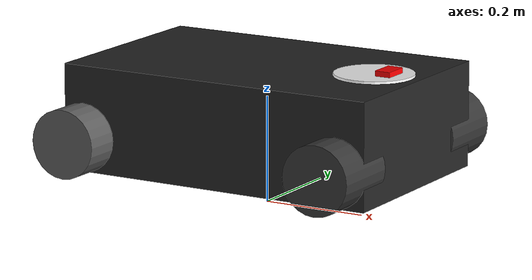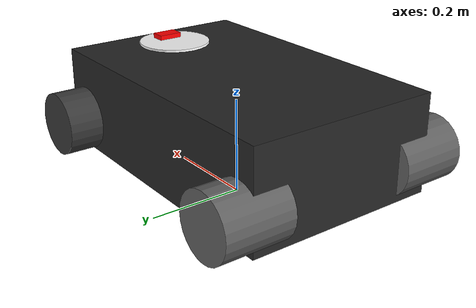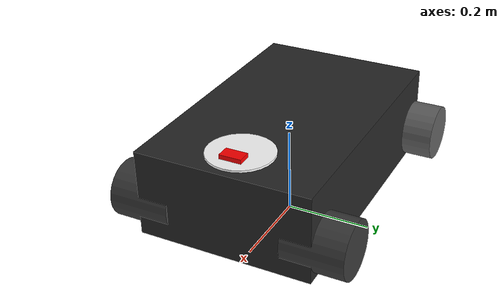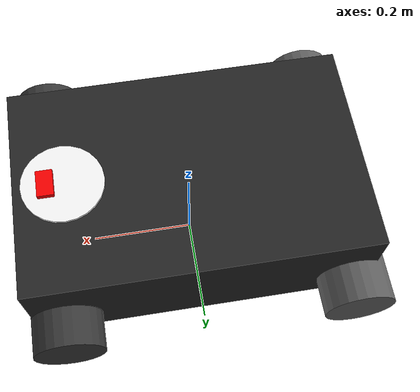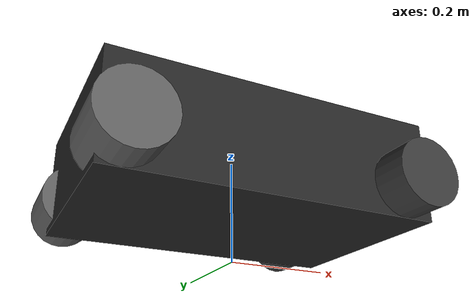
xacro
<?xml version="1.0"?>
<robot xmlns:xacro="http://www.ros.org/wiki/xacro">

    <!-- 物理参数定义 -->
    <xacro:property name="chassis_length" value="0.63" />  <!-- 63cm -->
    <xacro:property name="chassis_width" value="0.40" />   <!-- 40cm -->
    <xacro:property name="chassis_height" value="0.20" />  <!-- 40cm -->

    <xacro:property name="wheel_radius" value="0.065" />   <!-- 13cm直径，半径6.5cm -->
    <xacro:property name="wheel_thickness" value="0.14" />
    <xacro:property name="wheel_mass" value="3.0" />
    <xacro:property name="steering_mass" value="0.01" />
    <xacro:property name="body_mass" value="25.0" />

    <!-- 轮子位置计算 -->
    <!-- 前轮距离最前方6cm，后轮距离最后方4cm -->
    <xacro:property name="front_wheel_x" value="${chassis_length/2 - 0.06}" />
    <xacro:property name="rear_wheel_x" value="${-chassis_length/2 + 0.04}" />
    <xacro:property name="wheel_y" value="${chassis_width/2}" />

    <!-- BASE FOOTPRINT -->
    <link name="base_footprint">
        <origin xyz="0 0 0" rpy="0 0 0" />
    </link>

    <link name="base_link">
        <inertial>
            <origin xyz="0 0 ${chassis_height/2}" rpy="0 0 0" />
            <mass value="${body_mass}" />
            <inertia ixx="${body_mass/12 * (chassis_width*chassis_width + chassis_height*chassis_height)}"
                ixy="0" ixz="0"
                iyy="${body_mass/12 * (chassis_length*chassis_length + chassis_height*chassis_height)}"
                iyz="0"
                izz="${body_mass/12 * (chassis_length*chassis_length + chassis_width*chassis_width)}" />
        </inertial>
        <visual>
            <origin xyz="0 0 ${chassis_height/2}" rpy="0 0 0" />
            <geometry>
                <box size="${chassis_length} ${chassis_width} ${chassis_height}" />
            </geometry>
            <material name="black">
                <color rgba="0.15 0.15 0.15 1.0" />
            </material>
        </visual>
        <collision>
            <origin xyz="0 0 ${chassis_height/2}" rpy="0 0 0" />
            <geometry>
                <box size="${chassis_length} ${chassis_width} ${chassis_height}" />
            </geometry>
        </collision>
    </link>
    <joint name="base_joint" type="fixed">
        <parent link="base_footprint" />
        <child link="base_link" />
        <origin xyz="0.0 0.0 ${wheel_radius}" rpy="0 0 0" />
    </joint>

    <!-- FRONT LEFT WHEEL -->
    <link name="fr_left_steer_link">
        <inertial>
            <origin xyz="0 0 0" rpy="0 0 0" />
            <mass value="${steering_mass}" />
            <inertia
                ixx="${steering_mass/12*(3*wheel_radius*wheel_radius + wheel_thickness*wheel_thickness)}"
                ixy="0" ixz="0"
                iyy="${steering_mass/12*(3*wheel_radius*wheel_radius + wheel_thickness*wheel_thickness)}"
                iyz="0" izz="${steering_mass/2 * wheel_radius*wheel_radius}" />
        </inertial>
    </link>
    <joint name="fr_left_steer_joint" type="revolute">
        <origin xyz="${front_wheel_x} ${wheel_y} ${wheel_radius}" rpy="0 0 0" />
        <parent link="base_link" />
        <child link="fr_left_steer_link" />
        <axis xyz="0 0 1" />
        <limit upper="0.6" lower="-0.6" effort="100" velocity="10" />
        <dynamics damping="10.0" friction="1.0" />
    </joint>
    <link name="fr_left_wheel_link">
        <inertial>
            <origin xyz="0 0 0" rpy="0 0 0" />
            <mass value="${wheel_mass}" />
            <inertia
                ixx="${wheel_mass/12*(3*wheel_radius*wheel_radius + wheel_thickness*wheel_thickness)}"
                ixy="0" ixz="0"
                iyy="${wheel_mass/12*(3*wheel_radius*wheel_radius + wheel_thickness*wheel_thickness)}"
                iyz="0" izz="${wheel_mass/2 * wheel_radius*wheel_radius}" />
        </inertial>
        <visual>
            <origin xyz="0 0 0" rpy="1.5708 0 0" />
            <geometry>
                <cylinder radius="${wheel_radius}" length="${wheel_thickness}" />
            </geometry>
            <material name="">
                <color rgba="0.223529411764706 0.223529411764706 0.223529411764706 1" />
            </material>
        </visual>
        <collision>
            <origin xyz="0 0 0" rpy="1.5708 0 0" />
            <geometry>
                <cylinder radius="${wheel_radius}" length="${wheel_thickness}" />
            </geometry>
        </collision>
    </link>
    <joint name="fr_left_wheel_joint" type="continuous">
        <origin xyz="0 0 0" rpy="0 0 0" />
        <parent link="fr_left_steer_link" />
        <child link="fr_left_wheel_link" />
        <axis xyz="0 1 0" />
        <dynamics friction="0.8" damping="0.5" />
        <limit lower="-3.14159" upper="3.14159" effort="200" velocity="-1" />
    </joint>

    <!-- FRONT RIGHT WHEEL -->
    <link name="fr_right_steer_link">
        <inertial>
            <origin xyz="0 0 0" rpy="0 0 0" />
            <mass value="${steering_mass}" />
            <inertia
                ixx="${steering_mass/12*(3*wheel_radius*wheel_radius + wheel_thickness*wheel_thickness)}"
                ixy="0" ixz="0"
                iyy="${steering_mass/12*(3*wheel_radius*wheel_radius + wheel_thickness*wheel_thickness)}"
                iyz="0" izz="${steering_mass/2 * wheel_radius*wheel_radius}" />
        </inertial>
    </link>
    <joint name="fr_right_steer_joint" type="revolute">
        <origin xyz="${front_wheel_x} ${-wheel_y} ${wheel_radius}" rpy="0 0 0" />
        <parent link="base_link" />
        <child link="fr_right_steer_link" />
        <axis xyz="0 0 1" />
        <limit upper="0.6" lower="-0.6" effort="100" velocity="10" />
        <dynamics damping="10.0" friction="1.0" />
    </joint>
    <link name="fr_right_wheel_link">
        <inertial>
            <origin xyz="0 0 0" rpy="0 0 0" />
            <mass value="${wheel_mass}" />
            <inertia
                ixx="${wheel_mass/12*(3*wheel_radius*wheel_radius + wheel_thickness*wheel_thickness)}"
                ixy="0" ixz="0"
                iyy="${wheel_mass/12*(3*wheel_radius*wheel_radius + wheel_thickness*wheel_thickness)}"
                iyz="0" izz="${wheel_mass/2 * wheel_radius*wheel_radius}" />
        </inertial>
        <visual>
            <origin xyz="0 0 0" rpy="1.5708 0 0" />
            <geometry>
                <cylinder radius="${wheel_radius}" length="${wheel_thickness}" />
            </geometry>
            <material name="">
                <color rgba="0.223529411764706 0.223529411764706 0.223529411764706 1" />
            </material>
        </visual>
        <collision>
            <origin xyz="0 0 0" rpy="1.5708 0 0" />
            <geometry>
                <cylinder radius="${wheel_radius}" length="${wheel_thickness}" />
            </geometry>
        </collision>
    </link>
    <joint name="fr_right_wheel_joint" type="continuous">
        <origin xyz="0 0 0" rpy="0 0 0" />
        <parent link="fr_right_steer_link" />
        <child link="fr_right_wheel_link" />
        <axis xyz="0 1 0" />
        <dynamics friction="0.8" damping="0.5" />
        <limit lower="-3.14159" upper="3.14159" effort="200" velocity="-1" />
    </joint>

    <!-- REAR LEFT WHEEL -->
    <link name="re_left_wheel_link">
        <inertial>
            <origin xyz="0 0 0" rpy="0 0 0" />
            <mass value="${wheel_mass}" />
            <inertia
                ixx="${wheel_mass/12*(3*wheel_radius*wheel_radius + wheel_thickness*wheel_thickness)}"
                ixy="0" ixz="0"
                iyy="${wheel_mass/12*(3*wheel_radius*wheel_radius + wheel_thickness*wheel_thickness)}"
                iyz="0" izz="${wheel_mass/2 * wheel_radius*wheel_radius}" />
        </inertial>
        <visual>
            <origin xyz="0 0 0" rpy="1.5708 0 0" />
            <geometry>
                <cylinder radius="${wheel_radius}" length="${wheel_thickness}" />
            </geometry>
            <material name="">
                <color rgba="0.37647 0.37647 0.37647 1" />
            </material>
        </visual>
        <collision>
            <origin xyz="0 0 0" rpy="1.5708 0 0" />
            <geometry>
                <cylinder radius="${wheel_radius}" length="${wheel_thickness}" />
            </geometry>
        </collision>
    </link>
    <joint name="re_left_wheel_joint" type="continuous">
        <origin xyz="${rear_wheel_x} ${wheel_y} ${wheel_radius}" rpy="0 0 0" />
        <parent link="base_link" />
        <child link="re_left_wheel_link" />
        <axis xyz="0 1 0" />
        <dynamics friction="0.8" damping="0.5" />
        <limit lower="-3.14159" upper="3.14159" effort="70" velocity="-1" />
    </joint>

    <!-- REAR RIGHT WHEEL -->
    <link name="re_right_wheel_link">
        <inertial>
            <origin xyz="0 0 0" rpy="0 0 0" />
            <mass value="${wheel_mass}" />
            <inertia
                ixx="${wheel_mass/12*(3*wheel_radius*wheel_radius + wheel_thickness*wheel_thickness)}"
                ixy="0" ixz="0"
                iyy="${wheel_mass/12*(3*wheel_radius*wheel_radius + wheel_thickness*wheel_thickness)}"
                iyz="0" izz="${wheel_mass/2 * wheel_radius*wheel_radius}" />
        </inertial>
        <visual>
            <origin xyz="0 0 0" rpy="1.5708 0 0" />
            <geometry>
                <cylinder radius="${wheel_radius}" length="${wheel_thickness}" />
            </geometry>
            <material name="">
                <color rgba="0.37647 0.37647 0.37647 1" />
            </material>
        </visual>
        <collision>
            <origin xyz="0 0 0" rpy="1.5708 0 0" />
            <geometry>
                <cylinder radius="${wheel_radius}" length="${wheel_thickness}" />
            </geometry>
        </collision>
    </link>
    <joint name="re_right_wheel_joint" type="continuous">
        <origin xyz="${rear_wheel_x} ${-wheel_y} ${wheel_radius}" rpy="0 0 0" />
        <parent link="base_link" />
        <child link="re_right_wheel_link" />
        <axis xyz="0 1 0" />
        <dynamics friction="0.8" damping="0.5" />
        <limit lower="-3.14159" upper="3.14159" effort="70" velocity="-1" />
    </joint>

    <!-- CAMERA: 前轮水平位置，宽度一半处（y=0） -->
    <link name="camera_link">
        <visual>
            <geometry>
                <box size="0.03 0.05 0.03"/>
            </geometry>
            <origin rpy="0 0 0" xyz="0 0 0"/>
            <material name="red">
                <color rgba="1.0 0.0 0.0 1.0"/>
            </material>
        </visual>
        <collision>
            <geometry>
                <box size="0.03 0.05 0.03"/>
            </geometry>
            <origin rpy="0 0 0" xyz="0 0 0"/>
        </collision>
        <inertial>
            <origin xyz="0 0 0" rpy="0 0 0" />
            <mass value="0.1"/>
            <inertia ixx="0.0001" ixy="0" ixz="0" iyy="0.0001" iyz="0" izz="0.0001"/>
        </inertial>
    </link>
    <joint name="camera_joint" type="fixed">
        <parent link="base_link"/>
        <child link="camera_link"/>
        <origin rpy="0 0 0" xyz="${front_wheel_x} 0 ${chassis_height}"/>
    </joint>

    <!-- LASER: 摄像头往后3cm -->
    <link name="laser_link">
        <visual>
            <geometry>
                <cylinder length="0.03" radius="0.075"/>
            </geometry>
            <origin rpy="0 0 0" xyz="0 0 -0.01"/>
            <material name="rgba(255,255,255,1)">
                <color rgba="1 1 1 1"/>
            </material>
        </visual>
        <collision>
            <geometry>
                <cylinder length="0.03" radius="0.075"/>
            </geometry>
            <origin rpy="0 0 0" xyz="0 0 -0.01"/>
        </collision>
        <inertial>
            <origin xyz="0 0 0" rpy="0 0 0" />
            <mass value="0.2"/>
            <inertia ixx="0.0001" ixy="0" ixz="0" iyy="0.0001" iyz="0" izz="0.0001"/>
        </inertial>
    </link>
    <joint name="laser_joint" type="fixed">
        <parent link="base_link"/>
        <child link="laser_link"/>
        <origin rpy="0 0 0" xyz="${front_wheel_x - 0.03} 0 ${chassis_height}"/>
    </joint>

    <!-- IMU -->
    <link name="imu_link">
        <visual>
            <geometry>
                <box size="0.02 0.02 0.02"/>
            </geometry>
            <origin rpy="0 0 0" xyz="0 0 0"/>
            <material name="rgba(255,255,255,1)">
                <color rgba="1 1 1 1"/>
            </material>
        </visual>
        <collision>
            <geometry>
                <box size="0.02 0.02 0.02"/>
            </geometry>
            <origin rpy="0 0 0" xyz="0 0 0"/>
        </collision>
        <inertial>
            <origin xyz="0 0 0" rpy="0 0 0" />
            <mass value="0.05"/>
            <inertia ixx="0.0001" ixy="0" ixz="0" iyy="0.0001" iyz="0" izz="0.0001"/>
        </inertial>
    </link>
    <joint name="imu_joint" type="fixed">
        <parent link="base_link"/>
        <child link="imu_link"/>
        <origin rpy="0 0 0" xyz="0 0 ${chassis_height/2}"/>
    </joint>

</robot>
